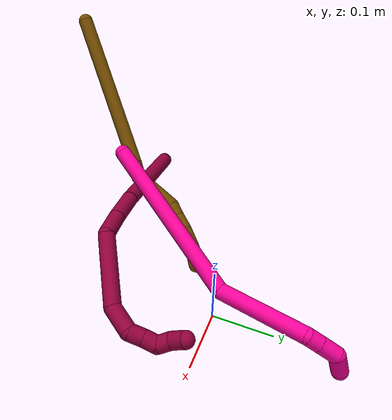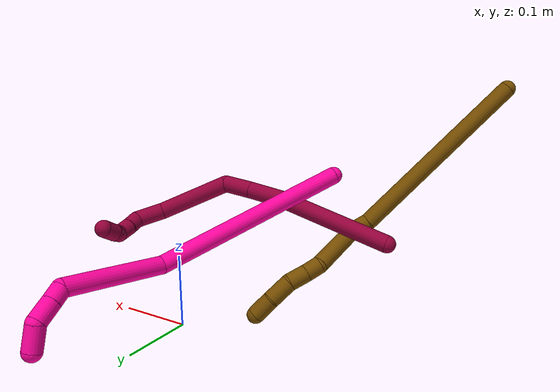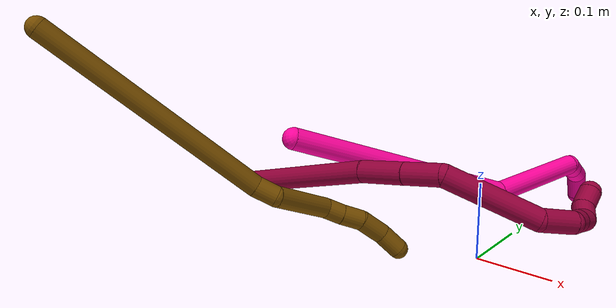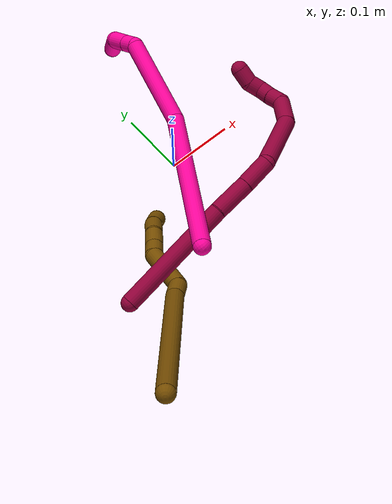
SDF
<sdf version="1.7">
 <world name="default">
  <model name="8">
   <static>0</static>
   <link name="8">
    <collision name="collision-cylinder-e_1_1_4">
     <pose>0.01048 -0.024625 -0.080695 2.84541 0.123581 0.786252</pose>
     <geometry><cylinder><radius>0.0125</radius><length>0.170034</length></cylinder></geometry>
     <surface>
      <friction><ode><mu>1.16</mu><mu2>1.16</mu2><slip1>0</slip1><slip2>0</slip2></ode></friction>
      <contact><ode><kp>1e+06</kp><kd>1</kd><max_vel>0</max_vel><min_depth>0.001</min_depth></ode></contact>
     </surface>
    </collision>
    <visual name="visual-cylinder-e_1_1_4">
     <pose>0.01048 -0.024625 -0.080695 2.84541 0.123581 0.786252</pose>
     <geometry><cylinder><radius>0.0125</radius><length>0.170034</length></cylinder></geometry>
     <material><ambient>0.584314 0 0.227451 1</ambient></material>
    </visual>
    <collision name="collision-cylinder-e_2_4_5">
     <pose>0.024459 -0.053828 -0.187029 2.96491 0.133567 1.29355</pose>
     <geometry><cylinder><radius>0.0125</radius><length>0.052558</length></cylinder></geometry>
     <surface>
      <friction><ode><mu>1.16</mu><mu2>1.16</mu2><slip1>0</slip1><slip2>0</slip2></ode></friction>
      <contact><ode><kp>1e+06</kp><kd>1</kd><max_vel>0</max_vel><min_depth>0.001</min_depth></ode></contact>
     </surface>
    </collision>
    <visual name="visual-cylinder-e_2_4_5">
     <pose>0.024459 -0.053828 -0.187029 2.96491 0.133567 1.29355</pose>
     <geometry><cylinder><radius>0.0125</radius><length>0.052558</length></cylinder></geometry>
     <material><ambient>0.584314 0 0.227451 1</ambient></material>
    </visual>
    <collision name="collision-cylinder-e_3_5_6">
     <pose>0.032007 -0.061955 -0.23362 2.97377 0.188262 1.68606</pose>
     <geometry><cylinder><radius>0.0125</radius><length>0.043264</length></cylinder></geometry>
     <surface>
      <friction><ode><mu>1.16</mu><mu2>1.16</mu2><slip1>0</slip1><slip2>0</slip2></ode></friction>
      <contact><ode><kp>1e+06</kp><kd>1</kd><max_vel>0</max_vel><min_depth>0.001</min_depth></ode></contact>
     </surface>
    </collision>
    <visual name="visual-cylinder-e_3_5_6">
     <pose>0.032007 -0.061955 -0.23362 2.97377 0.188262 1.68606</pose>
     <geometry><cylinder><radius>0.0125</radius><length>0.043264</length></cylinder></geometry>
     <material><ambient>0.584314 0 0.227451 1</ambient></material>
    </visual>
    <collision name="collision-cylinder-e_4_6_7">
     <pose>0.064862 -0.046357 -0.295772 -2.70656 0.565075 -1.84017</pose>
     <geometry><cylinder><radius>0.0125</radius><length>0.107592</length></cylinder></geometry>
     <surface>
      <friction><ode><mu>1.16</mu><mu2>1.16</mu2><slip1>0</slip1><slip2>0</slip2></ode></friction>
      <contact><ode><kp>1e+06</kp><kd>1</kd><max_vel>0</max_vel><min_depth>0.001</min_depth></ode></contact>
     </surface>
    </collision>
    <visual name="visual-cylinder-e_4_6_7">
     <pose>0.064862 -0.046357 -0.295772 -2.70656 0.565075 -1.84017</pose>
     <geometry><cylinder><radius>0.0125</radius><length>0.107592</length></cylinder></geometry>
     <material><ambient>0.584314 0 0.227451 1</ambient></material>
    </visual>
    <collision name="collision-cylinder-e_5_7_8">
     <pose>0.11159 -0.024189 -0.346759 -2.84217 1.05163 -2.63298</pose>
     <geometry><cylinder><radius>0.0125</radius><length>0.041283</length></cylinder></geometry>
     <surface>
      <friction><ode><mu>1.16</mu><mu2>1.16</mu2><slip1>0</slip1><slip2>0</slip2></ode></friction>
      <contact><ode><kp>1e+06</kp><kd>1</kd><max_vel>0</max_vel><min_depth>0.001</min_depth></ode></contact>
     </surface>
    </collision>
    <visual name="visual-cylinder-e_5_7_8">
     <pose>0.11159 -0.024189 -0.346759 -2.84217 1.05163 -2.63298</pose>
     <geometry><cylinder><radius>0.0125</radius><length>0.041283</length></cylinder></geometry>
     <material><ambient>0.584314 0 0.227451 1</ambient></material>
    </visual>
    <collision name="collision-cylinder-e_6_8_9">
     <pose>0.139487 -0.018932 -0.354823 -0.914288 1.29506 -0.712329</pose>
     <geometry><cylinder><radius>0.0125</radius><length>0.020732</length></cylinder></geometry>
     <surface>
      <friction><ode><mu>1.16</mu><mu2>1.16</mu2><slip1>0</slip1><slip2>0</slip2></ode></friction>
      <contact><ode><kp>1e+06</kp><kd>1</kd><max_vel>0</max_vel><min_depth>0.001</min_depth></ode></contact>
     </surface>
    </collision>
    <visual name="visual-cylinder-e_6_8_9">
     <pose>0.139487 -0.018932 -0.354823 -0.914288 1.29506 -0.712329</pose>
     <geometry><cylinder><radius>0.0125</radius><length>0.020732</length></cylinder></geometry>
     <material><ambient>0.584314 0 0.227451 1</ambient></material>
    </visual>
    <collision name="collision-cylinder-e_7_9_10">
     <pose>0.15979 -0.014565 -0.352399 -1.25319 1.35689 -1.05646</pose>
     <geometry><cylinder><radius>0.0125</radius><length>0.021138</length></cylinder></geometry>
     <surface>
      <friction><ode><mu>1.16</mu><mu2>1.16</mu2><slip1>0</slip1><slip2>0</slip2></ode></friction>
      <contact><ode><kp>1e+06</kp><kd>1</kd><max_vel>0</max_vel><min_depth>0.001</min_depth></ode></contact>
     </surface>
    </collision>
    <visual name="visual-cylinder-e_7_9_10">
     <pose>0.15979 -0.014565 -0.352399 -1.25319 1.35689 -1.05646</pose>
     <geometry><cylinder><radius>0.0125</radius><length>0.021138</length></cylinder></geometry>
     <material><ambient>0.584314 0 0.227451 1</ambient></material>
    </visual>
    <collision name="collision-cylinder-e_8_10_11">
     <pose>0.177923 -0.016373 -0.346811 0.678339 0.893466 0.334843</pose>
     <geometry><cylinder><radius>0.0125</radius><length>0.020033</length></cylinder></geometry>
     <surface>
      <friction><ode><mu>1.16</mu><mu2>1.16</mu2><slip1>0</slip1><slip2>0</slip2></ode></friction>
      <contact><ode><kp>1e+06</kp><kd>1</kd><max_vel>0</max_vel><min_depth>0.001</min_depth></ode></contact>
     </surface>
    </collision>
    <visual name="visual-cylinder-e_8_10_11">
     <pose>0.177923 -0.016373 -0.346811 0.678339 0.893466 0.334843</pose>
     <geometry><cylinder><radius>0.0125</radius><length>0.020033</length></cylinder></geometry>
     <material><ambient>0.584314 0 0.227451 1</ambient></material>
    </visual>
    <collision name="collision-cylinder-e_9_11_2">
     <pose>0.19543 -0.026715 -0.340749 1.38935 0.979827 0.836274</pose>
     <geometry><cylinder><radius>0.0125</radius><length>0.023366</length></cylinder></geometry>
     <surface>
      <friction><ode><mu>1.16</mu><mu2>1.16</mu2><slip1>0</slip1><slip2>0</slip2></ode></friction>
      <contact><ode><kp>1e+06</kp><kd>1</kd><max_vel>0</max_vel><min_depth>0.001</min_depth></ode></contact>
     </surface>
    </collision>
    <visual name="visual-cylinder-e_9_11_2">
     <pose>0.19543 -0.026715 -0.340749 1.38935 0.979827 0.836274</pose>
     <geometry><cylinder><radius>0.0125</radius><length>0.023366</length></cylinder></geometry>
     <material><ambient>0.584314 0 0.227451 1</ambient></material>
    </visual>
    <collision name="collision-sphere-2">
     <pose>0.205132 -0.033117 -0.339574 0 -0 0</pose>
     <geometry><sphere><radius>0.0125</radius></sphere></geometry>
     <surface>
      <friction><ode><mu>1.16</mu><mu2>1.16</mu2><slip1>0</slip1><slip2>0</slip2></ode></friction>
      <contact><ode><kp>1e+06</kp><kd>1</kd><max_vel>0</max_vel><min_depth>0.001</min_depth></ode></contact>
     </surface>
    </collision>
    <visual name="visual-sphere-2">
     <pose>0.205132 -0.033117 -0.339574 0 -0 0</pose>
     <geometry><sphere><radius>0.0125</radius></sphere></geometry>
     <material><ambient>0.584314 0 0.227451 1</ambient></material>
    </visual>
    <collision name="collision-sphere-11">
     <pose>0.185728 -0.020312 -0.341923 0 -0 0</pose>
     <geometry><sphere><radius>0.0125</radius></sphere></geometry>
     <surface>
      <friction><ode><mu>1.16</mu><mu2>1.16</mu2><slip1>0</slip1><slip2>0</slip2></ode></friction>
      <contact><ode><kp>1e+06</kp><kd>1</kd><max_vel>0</max_vel><min_depth>0.001</min_depth></ode></contact>
     </surface>
    </collision>
    <visual name="visual-sphere-11">
     <pose>0.185728 -0.020312 -0.341923 0 -0 0</pose>
     <geometry><sphere><radius>0.0125</radius></sphere></geometry>
     <material><ambient>0.584314 0 0.227451 1</ambient></material>
    </visual>
    <collision name="collision-sphere-10">
     <pose>0.170118 -0.012434 -0.351699 0 -0 0</pose>
     <geometry><sphere><radius>0.0125</radius></sphere></geometry>
     <surface>
      <friction><ode><mu>1.16</mu><mu2>1.16</mu2><slip1>0</slip1><slip2>0</slip2></ode></friction>
      <contact><ode><kp>1e+06</kp><kd>1</kd><max_vel>0</max_vel><min_depth>0.001</min_depth></ode></contact>
     </surface>
    </collision>
    <visual name="visual-sphere-10">
     <pose>0.170118 -0.012434 -0.351699 0 -0 0</pose>
     <geometry><sphere><radius>0.0125</radius></sphere></geometry>
     <material><ambient>0.584314 0 0.227451 1</ambient></material>
    </visual>
    <collision name="collision-sphere-9">
     <pose>0.149461 -0.016697 -0.3531 0 -0 0</pose>
     <geometry><sphere><radius>0.0125</radius></sphere></geometry>
     <surface>
      <friction><ode><mu>1.16</mu><mu2>1.16</mu2><slip1>0</slip1><slip2>0</slip2></ode></friction>
      <contact><ode><kp>1e+06</kp><kd>1</kd><max_vel>0</max_vel><min_depth>0.001</min_depth></ode></contact>
     </surface>
    </collision>
    <visual name="visual-sphere-9">
     <pose>0.149461 -0.016697 -0.3531 0 -0 0</pose>
     <geometry><sphere><radius>0.0125</radius></sphere></geometry>
     <material><ambient>0.584314 0 0.227451 1</ambient></material>
    </visual>
    <collision name="collision-sphere-4">
     <pose>0.02096 -0.04925 -0.161389 0 -0 0</pose>
     <geometry><sphere><radius>0.0125</radius></sphere></geometry>
     <surface>
      <friction><ode><mu>1.16</mu><mu2>1.16</mu2><slip1>0</slip1><slip2>0</slip2></ode></friction>
      <contact><ode><kp>1e+06</kp><kd>1</kd><max_vel>0</max_vel><min_depth>0.001</min_depth></ode></contact>
     </surface>
    </collision>
    <visual name="visual-sphere-4">
     <pose>0.02096 -0.04925 -0.161389 0 -0 0</pose>
     <geometry><sphere><radius>0.0125</radius></sphere></geometry>
     <material><ambient>0.584314 0 0.227451 1</ambient></material>
    </visual>
    <collision name="collision-sphere-1">
     <geometry><sphere><radius>0.0125</radius></sphere></geometry>
     <surface>
      <friction><ode><mu>1.16</mu><mu2>1.16</mu2><slip1>0</slip1><slip2>0</slip2></ode></friction>
      <contact><ode><kp>1e+06</kp><kd>1</kd><max_vel>0</max_vel><min_depth>0.001</min_depth></ode></contact>
     </surface>
    </collision>
    <visual name="visual-sphere-1">
     <geometry><sphere><radius>0.0125</radius></sphere></geometry>
     <material><ambient>0.584314 0 0.227451 1</ambient></material>
    </visual>
    <collision name="collision-sphere-8">
     <pose>0.129512 -0.021168 -0.356545 0 -0 0</pose>
     <geometry><sphere><radius>0.0125</radius></sphere></geometry>
     <surface>
      <friction><ode><mu>1.16</mu><mu2>1.16</mu2><slip1>0</slip1><slip2>0</slip2></ode></friction>
      <contact><ode><kp>1e+06</kp><kd>1</kd><max_vel>0</max_vel><min_depth>0.001</min_depth></ode></contact>
     </surface>
    </collision>
    <visual name="visual-sphere-8">
     <pose>0.129512 -0.021168 -0.356545 0 -0 0</pose>
     <geometry><sphere><radius>0.0125</radius></sphere></geometry>
     <material><ambient>0.584314 0 0.227451 1</ambient></material>
    </visual>
    <collision name="collision-sphere-5">
     <pose>0.027959 -0.058406 -0.212668 0 -0 0</pose>
     <geometry><sphere><radius>0.0125</radius></sphere></geometry>
     <surface>
      <friction><ode><mu>1.16</mu><mu2>1.16</mu2><slip1>0</slip1><slip2>0</slip2></ode></friction>
      <contact><ode><kp>1e+06</kp><kd>1</kd><max_vel>0</max_vel><min_depth>0.001</min_depth></ode></contact>
     </surface>
    </collision>
    <visual name="visual-sphere-5">
     <pose>0.027959 -0.058406 -0.212668 0 -0 0</pose>
     <geometry><sphere><radius>0.0125</radius></sphere></geometry>
     <material><ambient>0.584314 0 0.227451 1</ambient></material>
    </visual>
    <collision name="collision-sphere-6">
     <pose>0.036056 -0.065505 -0.254571 0 -0 0</pose>
     <geometry><sphere><radius>0.0125</radius></sphere></geometry>
     <surface>
      <friction><ode><mu>1.16</mu><mu2>1.16</mu2><slip1>0</slip1><slip2>0</slip2></ode></friction>
      <contact><ode><kp>1e+06</kp><kd>1</kd><max_vel>0</max_vel><min_depth>0.001</min_depth></ode></contact>
     </surface>
    </collision>
    <visual name="visual-sphere-6">
     <pose>0.036056 -0.065505 -0.254571 0 -0 0</pose>
     <geometry><sphere><radius>0.0125</radius></sphere></geometry>
     <material><ambient>0.584314 0 0.227451 1</ambient></material>
    </visual>
    <collision name="collision-sphere-7">
     <pose>0.093669 -0.02721 -0.336974 0 -0 0</pose>
     <geometry><sphere><radius>0.0125</radius></sphere></geometry>
     <surface>
      <friction><ode><mu>1.16</mu><mu2>1.16</mu2><slip1>0</slip1><slip2>0</slip2></ode></friction>
      <contact><ode><kp>1e+06</kp><kd>1</kd><max_vel>0</max_vel><min_depth>0.001</min_depth></ode></contact>
     </surface>
    </collision>
    <visual name="visual-sphere-7">
     <pose>0.093669 -0.02721 -0.336974 0 -0 0</pose>
     <geometry><sphere><radius>0.0125</radius></sphere></geometry>
     <material><ambient>0.584314 0 0.227451 1</ambient></material>
    </visual>
    <inertial>
     <pose>0.060876 -0.034671 -0.219022 0 -0 0</pose>
     <mass>0.5</mass>
     <inertia><ixx>0.00051</ixx><ixy>0</ixy><ixz>0</ixz><iyy>1.2e-05</iyy><iyz>0</iyz><izz>-6.6e-05</izz></inertia>
    </inertial>
   </link>
   <pose>-0.22112 -0.176184 0.104022 -1.54061 0.045287 1.50311</pose>
  </model>
  <model name="12">
   <static>0</static>
   <link name="12">
    <collision name="collision-cylinder-e_1_1_4">
     <pose>-8.4e-05 0.000614 -0.141195 -3.13725 -0.000596 0.272778</pose>
     <geometry><cylinder><radius>0.0125</radius><length>0.282394</length></cylinder></geometry>
     <surface>
      <friction><ode><mu>1.16</mu><mu2>1.16</mu2><slip1>0</slip1><slip2>0</slip2></ode></friction>
      <contact><ode><kp>1e+06</kp><kd>1</kd><max_vel>0</max_vel><min_depth>0.001</min_depth></ode></contact>
     </surface>
    </collision>
    <visual name="visual-cylinder-e_1_1_4">
     <pose>-8.4e-05 0.000614 -0.141195 -3.13725 -0.000596 0.272778</pose>
     <geometry><cylinder><radius>0.0125</radius><length>0.282394</length></cylinder></geometry>
     <material><ambient>0.466667 0.301961 0 1</ambient></material>
    </visual>
    <collision name="collision-cylinder-e_2_4_5">
     <pose>0.001807 -0.001175 -0.295221 2.95652 0.15023 1.36275</pose>
     <geometry><cylinder><radius>0.0125</radius><length>0.026403</length></cylinder></geometry>
     <surface>
      <friction><ode><mu>1.16</mu><mu2>1.16</mu2><slip1>0</slip1><slip2>0</slip2></ode></friction>
      <contact><ode><kp>1e+06</kp><kd>1</kd><max_vel>0</max_vel><min_depth>0.001</min_depth></ode></contact>
     </surface>
    </collision>
    <visual name="visual-cylinder-e_2_4_5">
     <pose>0.001807 -0.001175 -0.295221 2.95652 0.15023 1.36275</pose>
     <geometry><cylinder><radius>0.0125</radius><length>0.026403</length></cylinder></geometry>
     <material><ambient>0.466667 0.301961 0 1</ambient></material>
    </visual>
    <collision name="collision-cylinder-e_3_5_6">
     <pose>0.017352 0.010482 -0.341503 -2.74374 0.357839 -1.46244</pose>
     <geometry><cylinder><radius>0.0125</radius><length>0.07748</length></cylinder></geometry>
     <surface>
      <friction><ode><mu>1.16</mu><mu2>1.16</mu2><slip1>0</slip1><slip2>0</slip2></ode></friction>
      <contact><ode><kp>1e+06</kp><kd>1</kd><max_vel>0</max_vel><min_depth>0.001</min_depth></ode></contact>
     </surface>
    </collision>
    <visual name="visual-cylinder-e_3_5_6">
     <pose>0.017352 0.010482 -0.341503 -2.74374 0.357839 -1.46244</pose>
     <geometry><cylinder><radius>0.0125</radius><length>0.07748</length></cylinder></geometry>
     <material><ambient>0.466667 0.301961 0 1</ambient></material>
    </visual>
    <collision name="collision-cylinder-e_4_6_7">
     <pose>0.033597 0.024015 -0.385852 3.09338 0.240538 2.74778</pose>
     <geometry><cylinder><radius>0.0125</radius><length>0.022466</length></cylinder></geometry>
     <surface>
      <friction><ode><mu>1.16</mu><mu2>1.16</mu2><slip1>0</slip1><slip2>0</slip2></ode></friction>
      <contact><ode><kp>1e+06</kp><kd>1</kd><max_vel>0</max_vel><min_depth>0.001</min_depth></ode></contact>
     </surface>
    </collision>
    <visual name="visual-cylinder-e_4_6_7">
     <pose>0.033597 0.024015 -0.385852 3.09338 0.240538 2.74778</pose>
     <geometry><cylinder><radius>0.0125</radius><length>0.022466</length></cylinder></geometry>
     <material><ambient>0.466667 0.301961 0 1</ambient></material>
    </visual>
    <collision name="collision-cylinder-e_5_7_8">
     <pose>0.040667 0.022898 -0.409702 3.09594 0.326756 2.86637</pose>
     <geometry><cylinder><radius>0.0125</radius><length>0.027382</length></cylinder></geometry>
     <surface>
      <friction><ode><mu>1.16</mu><mu2>1.16</mu2><slip1>0</slip1><slip2>0</slip2></ode></friction>
      <contact><ode><kp>1e+06</kp><kd>1</kd><max_vel>0</max_vel><min_depth>0.001</min_depth></ode></contact>
     </surface>
    </collision>
    <visual name="visual-cylinder-e_5_7_8">
     <pose>0.040667 0.022898 -0.409702 3.09594 0.326756 2.86637</pose>
     <geometry><cylinder><radius>0.0125</radius><length>0.027382</length></cylinder></geometry>
     <material><ambient>0.466667 0.301961 0 1</ambient></material>
    </visual>
    <collision name="collision-cylinder-e_6_8_9">
     <pose>0.046102 0.023194 -0.439504 -3.08891 0.061556 -1.72594</pose>
     <geometry><cylinder><radius>0.0125</radius><length>0.033808</length></cylinder></geometry>
     <surface>
      <friction><ode><mu>1.16</mu><mu2>1.16</mu2><slip1>0</slip1><slip2>0</slip2></ode></friction>
      <contact><ode><kp>1e+06</kp><kd>1</kd><max_vel>0</max_vel><min_depth>0.001</min_depth></ode></contact>
     </surface>
    </collision>
    <visual name="visual-cylinder-e_6_8_9">
     <pose>0.046102 0.023194 -0.439504 -3.08891 0.061556 -1.72594</pose>
     <geometry><cylinder><radius>0.0125</radius><length>0.033808</length></cylinder></geometry>
     <material><ambient>0.466667 0.301961 0 1</ambient></material>
    </visual>
    <collision name="collision-cylinder-e_7_9_2">
     <pose>0.045594 0.022954 -0.471263 3.06603 -0.103147 -1.87752</pose>
     <geometry><cylinder><radius>0.0125</radius><length>0.030066</length></cylinder></geometry>
     <surface>
      <friction><ode><mu>1.16</mu><mu2>1.16</mu2><slip1>0</slip1><slip2>0</slip2></ode></friction>
      <contact><ode><kp>1e+06</kp><kd>1</kd><max_vel>0</max_vel><min_depth>0.001</min_depth></ode></contact>
     </surface>
    </collision>
    <visual name="visual-cylinder-e_7_9_2">
     <pose>0.045594 0.022954 -0.471263 3.06603 -0.103147 -1.87752</pose>
     <geometry><cylinder><radius>0.0125</radius><length>0.030066</length></cylinder></geometry>
     <material><ambient>0.466667 0.301961 0 1</ambient></material>
    </visual>
    <collision name="collision-sphere-2">
     <pose>0.044046 0.021825 -0.486174 0 -0 0</pose>
     <geometry><sphere><radius>0.0125</radius></sphere></geometry>
     <surface>
      <friction><ode><mu>1.16</mu><mu2>1.16</mu2><slip1>0</slip1><slip2>0</slip2></ode></friction>
      <contact><ode><kp>1e+06</kp><kd>1</kd><max_vel>0</max_vel><min_depth>0.001</min_depth></ode></contact>
     </surface>
    </collision>
    <visual name="visual-sphere-2">
     <pose>0.044046 0.021825 -0.486174 0 -0 0</pose>
     <geometry><sphere><radius>0.0125</radius></sphere></geometry>
     <material><ambient>0.466667 0.301961 0 1</ambient></material>
    </visual>
    <collision name="collision-sphere-9">
     <pose>0.047141 0.024083 -0.456353 0 -0 0</pose>
     <geometry><sphere><radius>0.0125</radius></sphere></geometry>
     <surface>
      <friction><ode><mu>1.16</mu><mu2>1.16</mu2><slip1>0</slip1><slip2>0</slip2></ode></friction>
      <contact><ode><kp>1e+06</kp><kd>1</kd><max_vel>0</max_vel><min_depth>0.001</min_depth></ode></contact>
     </surface>
    </collision>
    <visual name="visual-sphere-9">
     <pose>0.047141 0.024083 -0.456353 0 -0 0</pose>
     <geometry><sphere><radius>0.0125</radius></sphere></geometry>
     <material><ambient>0.466667 0.301961 0 1</ambient></material>
    </visual>
    <collision name="collision-sphere-4">
     <pose>-0.000168 0.001227 -0.282391 0 -0 0</pose>
     <geometry><sphere><radius>0.0125</radius></sphere></geometry>
     <surface>
      <friction><ode><mu>1.16</mu><mu2>1.16</mu2><slip1>0</slip1><slip2>0</slip2></ode></friction>
      <contact><ode><kp>1e+06</kp><kd>1</kd><max_vel>0</max_vel><min_depth>0.001</min_depth></ode></contact>
     </surface>
    </collision>
    <visual name="visual-sphere-4">
     <pose>-0.000168 0.001227 -0.282391 0 -0 0</pose>
     <geometry><sphere><radius>0.0125</radius></sphere></geometry>
     <material><ambient>0.466667 0.301961 0 1</ambient></material>
    </visual>
    <collision name="collision-sphere-1">
     <geometry><sphere><radius>0.0125</radius></sphere></geometry>
     <surface>
      <friction><ode><mu>1.16</mu><mu2>1.16</mu2><slip1>0</slip1><slip2>0</slip2></ode></friction>
      <contact><ode><kp>1e+06</kp><kd>1</kd><max_vel>0</max_vel><min_depth>0.001</min_depth></ode></contact>
     </surface>
    </collision>
    <visual name="visual-sphere-1">
     <geometry><sphere><radius>0.0125</radius></sphere></geometry>
     <material><ambient>0.466667 0.301961 0 1</ambient></material>
    </visual>
    <collision name="collision-sphere-8">
     <pose>0.045062 0.022306 -0.422655 0 -0 0</pose>
     <geometry><sphere><radius>0.0125</radius></sphere></geometry>
     <surface>
      <friction><ode><mu>1.16</mu><mu2>1.16</mu2><slip1>0</slip1><slip2>0</slip2></ode></friction>
      <contact><ode><kp>1e+06</kp><kd>1</kd><max_vel>0</max_vel><min_depth>0.001</min_depth></ode></contact>
     </surface>
    </collision>
    <visual name="visual-sphere-8">
     <pose>0.045062 0.022306 -0.422655 0 -0 0</pose>
     <geometry><sphere><radius>0.0125</radius></sphere></geometry>
     <material><ambient>0.466667 0.301961 0 1</ambient></material>
    </visual>
    <collision name="collision-sphere-5">
     <pose>0.003783 -0.003577 -0.308051 0 -0 0</pose>
     <geometry><sphere><radius>0.0125</radius></sphere></geometry>
     <surface>
      <friction><ode><mu>1.16</mu><mu2>1.16</mu2><slip1>0</slip1><slip2>0</slip2></ode></friction>
      <contact><ode><kp>1e+06</kp><kd>1</kd><max_vel>0</max_vel><min_depth>0.001</min_depth></ode></contact>
     </surface>
    </collision>
    <visual name="visual-sphere-5">
     <pose>0.003783 -0.003577 -0.308051 0 -0 0</pose>
     <geometry><sphere><radius>0.0125</radius></sphere></geometry>
     <material><ambient>0.466667 0.301961 0 1</ambient></material>
    </visual>
    <collision name="collision-sphere-6">
     <pose>0.030921 0.024541 -0.374955 0 -0 0</pose>
     <geometry><sphere><radius>0.0125</radius></sphere></geometry>
     <surface>
      <friction><ode><mu>1.16</mu><mu2>1.16</mu2><slip1>0</slip1><slip2>0</slip2></ode></friction>
      <contact><ode><kp>1e+06</kp><kd>1</kd><max_vel>0</max_vel><min_depth>0.001</min_depth></ode></contact>
     </surface>
    </collision>
    <visual name="visual-sphere-6">
     <pose>0.030921 0.024541 -0.374955 0 -0 0</pose>
     <geometry><sphere><radius>0.0125</radius></sphere></geometry>
     <material><ambient>0.466667 0.301961 0 1</ambient></material>
    </visual>
    <collision name="collision-sphere-7">
     <pose>0.036273 0.023489 -0.396749 0 -0 0</pose>
     <geometry><sphere><radius>0.0125</radius></sphere></geometry>
     <surface>
      <friction><ode><mu>1.16</mu><mu2>1.16</mu2><slip1>0</slip1><slip2>0</slip2></ode></friction>
      <contact><ode><kp>1e+06</kp><kd>1</kd><max_vel>0</max_vel><min_depth>0.001</min_depth></ode></contact>
     </surface>
    </collision>
    <visual name="visual-sphere-7">
     <pose>0.036273 0.023489 -0.396749 0 -0 0</pose>
     <geometry><sphere><radius>0.0125</radius></sphere></geometry>
     <material><ambient>0.466667 0.301961 0 1</ambient></material>
    </visual>
    <inertial>
     <pose>0.012332 0.00719 -0.246085 0 -0 0</pose>
     <mass>0.5</mass>
     <inertia>
      <ixx>0.002286</ixx>
      <ixy>0</ixy>
      <ixz>0</ixz>
      <iyy>-0.001343</iyy>
      <iyz>0</iyz>
      <izz>-7.6e-05</izz>
     </inertia>
    </inertial>
   </link>
   <pose>-0.316832 -0.372143 0.302734 -0.382668 -0.791757 1.3497</pose>
  </model>
  <model name="18">
   <static>0</static>
   <link name="18">
    <collision name="collision-cylinder-e_1_1_4">
     <pose>0.028304 0.133652 -0.020429 -1.72247 0.206364 -0.240001</pose>
     <geometry><cylinder><radius>0.0125</radius><length>0.276269</length></cylinder></geometry>
     <surface>
      <friction><ode><mu>1.16</mu><mu2>1.16</mu2><slip1>0</slip1><slip2>0</slip2></ode></friction>
      <contact><ode><kp>1e+06</kp><kd>1</kd><max_vel>0</max_vel><min_depth>0.001</min_depth></ode></contact>
     </surface>
    </collision>
    <visual name="visual-cylinder-e_1_1_4">
     <pose>0.028304 0.133652 -0.020429 -1.72247 0.206364 -0.240001</pose>
     <geometry><cylinder><radius>0.0125</radius><length>0.276269</length></cylinder></geometry>
     <material><ambient>1 0.007843 0.615686 1</ambient></material>
    </visual>
    <collision name="collision-cylinder-e_2_4_5">
     <pose>0.101948 0.320053 -0.045713 -1.6626 0.70791 -0.769785</pose>
     <geometry><cylinder><radius>0.0125</radius><length>0.139454</length></cylinder></geometry>
     <surface>
      <friction><ode><mu>1.16</mu><mu2>1.16</mu2><slip1>0</slip1><slip2>0</slip2></ode></friction>
      <contact><ode><kp>1e+06</kp><kd>1</kd><max_vel>0</max_vel><min_depth>0.001</min_depth></ode></contact>
     </surface>
    </collision>
    <visual name="visual-cylinder-e_2_4_5">
     <pose>0.101948 0.320053 -0.045713 -1.6626 0.70791 -0.769785</pose>
     <geometry><cylinder><radius>0.0125</radius><length>0.139454</length></cylinder></geometry>
     <material><ambient>1 0.007843 0.615686 1</ambient></material>
    </visual>
    <collision name="collision-cylinder-e_3_5_6">
     <pose>0.149632 0.381568 -0.045714 -1.06486 0.229776 -0.135771</pose>
     <geometry><cylinder><radius>0.0125</radius><length>0.02058</length></cylinder></geometry>
     <surface>
      <friction><ode><mu>1.16</mu><mu2>1.16</mu2><slip1>0</slip1><slip2>0</slip2></ode></friction>
      <contact><ode><kp>1e+06</kp><kd>1</kd><max_vel>0</max_vel><min_depth>0.001</min_depth></ode></contact>
     </surface>
    </collision>
    <visual name="visual-cylinder-e_3_5_6">
     <pose>0.149632 0.381568 -0.045714 -1.06486 0.229776 -0.135771</pose>
     <geometry><cylinder><radius>0.0125</radius><length>0.02058</length></cylinder></geometry>
     <material><ambient>1 0.007843 0.615686 1</ambient></material>
    </visual>
    <collision name="collision-cylinder-e_4_6_7">
     <pose>0.155543 0.403313 -0.033985 -1.08386 0.23829 -0.143897</pose>
     <geometry><cylinder><radius>0.0125</radius><length>0.030232</length></cylinder></geometry>
     <surface>
      <friction><ode><mu>1.16</mu><mu2>1.16</mu2><slip1>0</slip1><slip2>0</slip2></ode></friction>
      <contact><ode><kp>1e+06</kp><kd>1</kd><max_vel>0</max_vel><min_depth>0.001</min_depth></ode></contact>
     </surface>
    </collision>
    <visual name="visual-cylinder-e_4_6_7">
     <pose>0.155543 0.403313 -0.033985 -1.08386 0.23829 -0.143897</pose>
     <geometry><cylinder><radius>0.0125</radius><length>0.030232</length></cylinder></geometry>
     <material><ambient>1 0.007843 0.615686 1</ambient></material>
    </visual>
    <collision name="collision-cylinder-e_5_7_2">
     <pose>0.150904 0.428701 -0.01945 -1.0176 -0.51269 0.290346</pose>
     <geometry><cylinder><radius>0.0125</radius><length>0.033465</length></cylinder></geometry>
     <surface>
      <friction><ode><mu>1.16</mu><mu2>1.16</mu2><slip1>0</slip1><slip2>0</slip2></ode></friction>
      <contact><ode><kp>1e+06</kp><kd>1</kd><max_vel>0</max_vel><min_depth>0.001</min_depth></ode></contact>
     </surface>
    </collision>
    <visual name="visual-cylinder-e_5_7_2">
     <pose>0.150904 0.428701 -0.01945 -1.0176 -0.51269 0.290346</pose>
     <geometry><cylinder><radius>0.0125</radius><length>0.033465</length></cylinder></geometry>
     <material><ambient>1 0.007843 0.615686 1</ambient></material>
    </visual>
    <collision name="collision-sphere-2">
     <pose>0.142696 0.441108 -0.011789 0 -0 0</pose>
     <geometry><sphere><radius>0.0125</radius></sphere></geometry>
     <surface>
      <friction><ode><mu>1.16</mu><mu2>1.16</mu2><slip1>0</slip1><slip2>0</slip2></ode></friction>
      <contact><ode><kp>1e+06</kp><kd>1</kd><max_vel>0</max_vel><min_depth>0.001</min_depth></ode></contact>
     </surface>
    </collision>
    <visual name="visual-sphere-2">
     <pose>0.142696 0.441108 -0.011789 0 -0 0</pose>
     <geometry><sphere><radius>0.0125</radius></sphere></geometry>
     <material><ambient>1 0.007843 0.615686 1</ambient></material>
    </visual>
    <collision name="collision-sphere-7">
     <pose>0.159111 0.416295 -0.027111 0 -0 0</pose>
     <geometry><sphere><radius>0.0125</radius></sphere></geometry>
     <surface>
      <friction><ode><mu>1.16</mu><mu2>1.16</mu2><slip1>0</slip1><slip2>0</slip2></ode></friction>
      <contact><ode><kp>1e+06</kp><kd>1</kd><max_vel>0</max_vel><min_depth>0.001</min_depth></ode></contact>
     </surface>
    </collision>
    <visual name="visual-sphere-7">
     <pose>0.159111 0.416295 -0.027111 0 -0 0</pose>
     <geometry><sphere><radius>0.0125</radius></sphere></geometry>
     <material><ambient>1 0.007843 0.615686 1</ambient></material>
    </visual>
    <collision name="collision-sphere-6">
     <pose>0.151975 0.390332 -0.040858 0 -0 0</pose>
     <geometry><sphere><radius>0.0125</radius></sphere></geometry>
     <surface>
      <friction><ode><mu>1.16</mu><mu2>1.16</mu2><slip1>0</slip1><slip2>0</slip2></ode></friction>
      <contact><ode><kp>1e+06</kp><kd>1</kd><max_vel>0</max_vel><min_depth>0.001</min_depth></ode></contact>
     </surface>
    </collision>
    <visual name="visual-sphere-6">
     <pose>0.151975 0.390332 -0.040858 0 -0 0</pose>
     <geometry><sphere><radius>0.0125</radius></sphere></geometry>
     <material><ambient>1 0.007843 0.615686 1</ambient></material>
    </visual>
    <collision name="collision-sphere-5">
     <pose>0.147288 0.372803 -0.050569 0 -0 0</pose>
     <geometry><sphere><radius>0.0125</radius></sphere></geometry>
     <surface>
      <friction><ode><mu>1.16</mu><mu2>1.16</mu2><slip1>0</slip1><slip2>0</slip2></ode></friction>
      <contact><ode><kp>1e+06</kp><kd>1</kd><max_vel>0</max_vel><min_depth>0.001</min_depth></ode></contact>
     </surface>
    </collision>
    <visual name="visual-sphere-5">
     <pose>0.147288 0.372803 -0.050569 0 -0 0</pose>
     <geometry><sphere><radius>0.0125</radius></sphere></geometry>
     <material><ambient>1 0.007843 0.615686 1</ambient></material>
    </visual>
    <collision name="collision-sphere-1">
     <geometry><sphere><radius>0.0125</radius></sphere></geometry>
     <surface>
      <friction><ode><mu>1.16</mu><mu2>1.16</mu2><slip1>0</slip1><slip2>0</slip2></ode></friction>
      <contact><ode><kp>1e+06</kp><kd>1</kd><max_vel>0</max_vel><min_depth>0.001</min_depth></ode></contact>
     </surface>
    </collision>
    <visual name="visual-sphere-1">
     <geometry><sphere><radius>0.0125</radius></sphere></geometry>
     <material><ambient>1 0.007843 0.615686 1</ambient></material>
    </visual>
    <collision name="collision-sphere-4">
     <pose>0.056608 0.267303 -0.040857 0 -0 0</pose>
     <geometry><sphere><radius>0.0125</radius></sphere></geometry>
     <surface>
      <friction><ode><mu>1.16</mu><mu2>1.16</mu2><slip1>0</slip1><slip2>0</slip2></ode></friction>
      <contact><ode><kp>1e+06</kp><kd>1</kd><max_vel>0</max_vel><min_depth>0.001</min_depth></ode></contact>
     </surface>
    </collision>
    <visual name="visual-sphere-4">
     <pose>0.056608 0.267303 -0.040857 0 -0 0</pose>
     <geometry><sphere><radius>0.0125</radius></sphere></geometry>
     <material><ambient>1 0.007843 0.615686 1</ambient></material>
    </visual>
    <inertial>
     <pose>0.069737 0.231897 -0.029276 0 -0 0</pose>
     <mass>0.5</mass>
     <inertia>
      <ixx>0.001293</ixx>
      <ixy>0</ixy>
      <ixz>0</ixz>
      <iyy>-0.000579</iyy>
      <iyz>0</iyz>
      <izz>-0.002406</izz>
     </inertia>
    </inertial>
   </link>
   <pose>-0.120304 -0.205502 0.182517 -2.21874 -0.785011 1.85289</pose>
  </model>
 </world>
</sdf>
